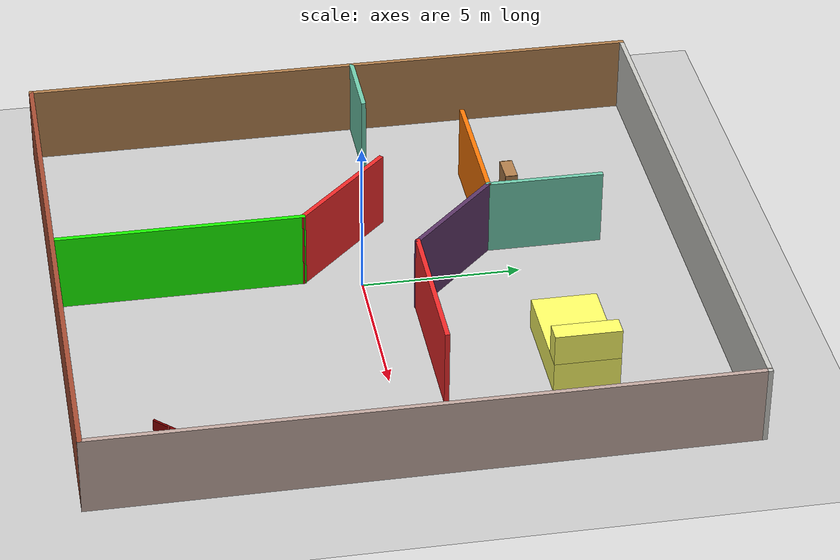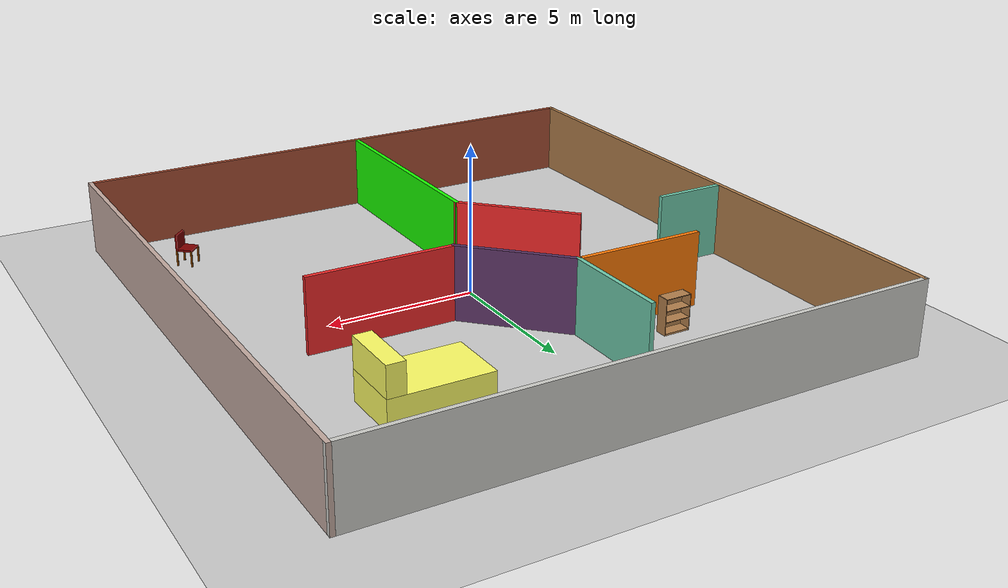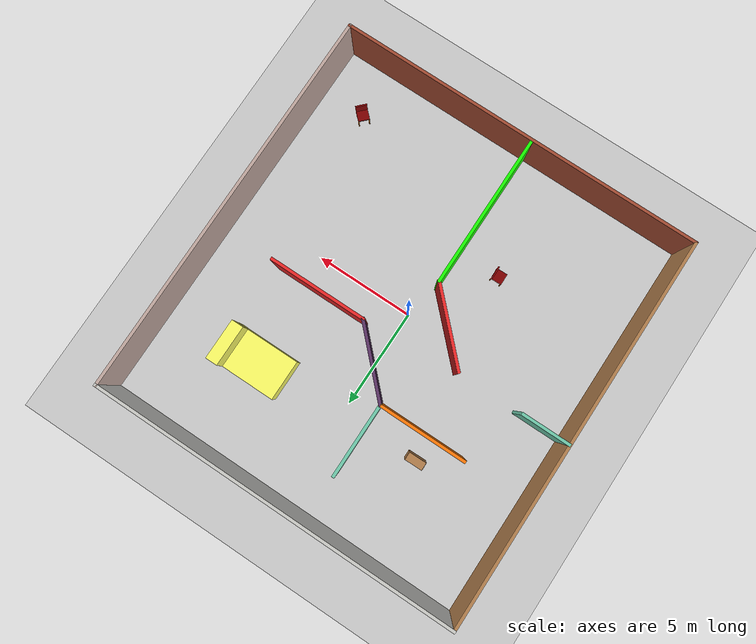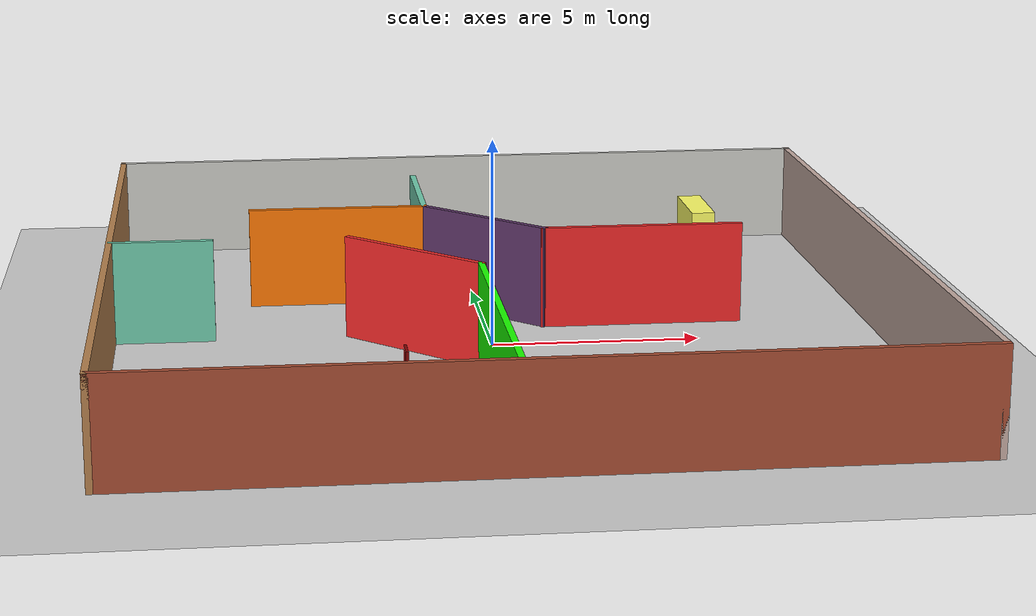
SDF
<sdf version="1.6">
 <world name="default">
  <model name="ground_plane">
   <static>1</static>
   <link name="link">
    <collision name="collision">
     <geometry><plane><normal>0 0 1</normal><size>100 100</size></plane></geometry>
     <surface>
      <contact><collide_bitmask>65535</collide_bitmask></contact>
      <friction><ode><mu>100</mu><mu2>50</mu2></ode></friction>
     </surface>
    </collision>
    <visual name="visual">
     <cast_shadows>0</cast_shadows>
     <geometry><plane><normal>0 0 1</normal><size>100 100</size></plane></geometry>
     <material>
      <script><uri>file://media/materials/scripts/gazebo.material</uri><name>Gazebo/Grey</name></script>
     </material>
    </visual>
   </link>
  </model>
  <model name="house_design">
   <pose>0.225817 0.399633 0 0 -0 0</pose>
   <link name="Wall_1">
    <collision name="Wall_1_Collision">
     <geometry><box><size>20 0.15 2.5</size></box></geometry>
     <pose>0 0 1.25 0 -0 0</pose>
    </collision>
    <visual name="Wall_1_Visual">
     <pose>0 0 1.25 0 -0 0</pose>
     <geometry><box><size>20 0.15 2.5</size></box></geometry>
     <material>
      <script><uri>file://media/materials/scripts/gazebo.material</uri><name>Gazebo/Wood</name></script>
      <ambient>1 1 1 1</ambient>
     </material>
     <meta><layer>0</layer></meta>
    </visual>
    <pose>-9.3 0 0 0 -0 -1.5708</pose>
   </link>
   <link name="Wall_2">
    <collision name="Wall_2_Collision">
     <geometry><box><size>18.75 0.15 2.5</size></box></geometry>
     <pose>0 0 1.25 0 -0 0</pose>
    </collision>
    <visual name="Wall_2_Visual">
     <pose>0 0 1.25 0 -0 0</pose>
     <geometry><box><size>18.75 0.15 2.5</size></box></geometry>
     <material>
      <script><uri>file://media/materials/scripts/gazebo.material</uri><name>Gazebo/Bricks</name></script>
      <ambient>1 1 1 1</ambient>
     </material>
     <meta><layer>0</layer></meta>
    </visual>
    <pose>-0 -9.925 0 0 -0 0</pose>
   </link>
   <link name="Wall_21">
    <collision name="Wall_21_Collision">
     <geometry><box><size>5 0.15 2.5</size></box></geometry>
     <pose>0 0 1.25 0 -0 0</pose>
    </collision>
    <visual name="Wall_21_Visual">
     <pose>0 0 1.25 0 -0 0</pose>
     <geometry><box><size>5 0.15 2.5</size></box></geometry>
     <material>
      <script><uri>file://media/materials/scripts/gazebo.material</uri><name>Gazebo/Grey</name></script>
      <ambient>0.937255 0.160784 0.160784 1</ambient>
     </material>
     <meta><layer>0</layer></meta>
    </visual>
    <pose>3.62745 1.09312 0 0 -0 3.14159</pose>
   </link>
   <link name="Wall_22">
    <collision name="Wall_22_Collision">
     <geometry><box><size>4 0.15 2.5</size></box></geometry>
     <pose>0 0 1.25 0 -0 0</pose>
    </collision>
    <visual name="Wall_22_Visual">
     <pose>0 0 1.25 0 -0 0</pose>
     <geometry><box><size>4 0.15 2.5</size></box></geometry>
     <material>
      <script><uri>file://media/materials/scripts/gazebo.material</uri><name>Gazebo/Grey</name></script>
      <ambient>0.360784 0.207843 0.4 1</ambient>
     </material>
     <meta><layer>0</layer></meta>
    </visual>
    <pose>-0.158727 2.4543 0 0 -0 2.35619</pose>
   </link>
   <link name="Wall_23">
    <collision name="Wall_23_Collision">
     <geometry><box><size>3.75 0.15 2.5</size></box></geometry>
     <pose>0 0 1.25 0 -0 0</pose>
    </collision>
    <visual name="Wall_23_Visual">
     <pose>0 0 1.25 0 -0 0</pose>
     <geometry><box><size>3.75 0.15 2.5</size></box></geometry>
     <material>
      <script><uri>file://media/materials/scripts/gazebo.material</uri><name>Gazebo/Grey</name></script>
      <ambient>0.435294 0.796078 0.67451 1</ambient>
     </material>
     <meta><layer>0</layer></meta>
    </visual>
    <pose>-1.51991 5.61548 0 0 -0 1.5708</pose>
   </link>
   <link name="Wall_25">
    <collision name="Wall_25_Collision">
     <geometry><box><size>4.5 0.15 2.5</size></box></geometry>
     <pose>0 0 1.25 0 -0 0</pose>
    </collision>
    <visual name="Wall_25_Visual">
     <pose>0 0 1.25 0 -0 0</pose>
     <geometry><box><size>4.5 0.15 2.5</size></box></geometry>
     <material>
      <script><uri>file://media/materials/scripts/gazebo.material</uri><name>Gazebo/Grey</name></script>
      <ambient>0.996078 0.47451 0.0196078 1</ambient>
     </material>
     <meta><layer>0</layer></meta>
    </visual>
    <pose>-3.69491 3.81548 0 0 -0 3.14159</pose>
   </link>
   <link name="Wall_27">
    <collision name="Wall_27_Collision">
     <geometry><box><size>4.25 0.15 2.5</size></box></geometry>
     <pose>0 0 1.25 0 -0 0</pose>
    </collision>
    <visual name="Wall_27_Visual">
     <pose>0 0 1.25 0 -0 0</pose>
     <geometry><box><size>4.25 0.15 2.5</size></box></geometry>
     <material>
      <script><uri>file://media/materials/scripts/gazebo.material</uri><name>Gazebo/Grey</name></script>
      <ambient>0.937255 0.160784 0.160784 1</ambient>
     </material>
     <meta><layer>0</layer></meta>
    </visual>
    <pose>-2.12843 -0.728636 0 0 -0 -0.785398</pose>
   </link>
   <link name="Wall_28">
    <collision name="Wall_28_Collision">
     <geometry><box><size>7.75 0.15 2.5</size></box></geometry>
     <pose>0 0 1.25 0 -0 0</pose>
    </collision>
    <visual name="Wall_28_Visual">
     <pose>0 0 1.25 0 -0 0</pose>
     <geometry><box><size>7.75 0.15 2.5</size></box></geometry>
     <material>
      <script><uri>file://media/materials/scripts/gazebo.material</uri><name>Gazebo/Grey</name></script>
      <ambient>0.0980392 1 0 1</ambient>
     </material>
     <meta><layer>0</layer></meta>
    </visual>
    <pose>-0.678859 -5.9782 0 0 -0 -1.5708</pose>
   </link>
   <link name="Wall_3">
    <collision name="Wall_3_Collision">
     <geometry><box><size>20 0.15 2.5</size></box></geometry>
     <pose>0 0 1.25 0 -0 0</pose>
    </collision>
    <visual name="Wall_3_Visual">
     <pose>0 0 1.25 0 -0 0</pose>
     <geometry><box><size>20 0.15 2.5</size></box></geometry>
     <material>
      <script><uri>file://media/materials/scripts/gazebo.material</uri><name>Gazebo/Grey</name></script>
      <ambient>0.760784 0.662745 0.627451 1</ambient>
     </material>
     <meta><layer>0</layer></meta>
    </visual>
    <pose>9.3 0 0 0 -0 1.5708</pose>
   </link>
   <link name="Wall_30">
    <collision name="Wall_30_Collision">
     <geometry><box><size>2.5 0.15 2.5</size></box></geometry>
     <pose>0 0 1.25 0 -0 0</pose>
    </collision>
    <visual name="Wall_30_Visual">
     <pose>0 0 1.25 0 -0 0</pose>
     <geometry><box><size>2.5 0.15 2.5</size></box></geometry>
     <material>
      <script><uri>file://media/materials/scripts/gazebo.material</uri><name>Gazebo/Grey</name></script>
      <ambient>0.435294 0.796078 0.67451 1</ambient>
     </material>
     <meta><layer>0</layer></meta>
    </visual>
    <pose>-8.08329 0.724022 0 0 -0 0</pose>
   </link>
   <link name="Wall_4">
    <collision name="Wall_4_Collision">
     <geometry><box><size>18.75 0.15 2.5</size></box></geometry>
     <pose>0 0 1.25 0 -0 0</pose>
    </collision>
    <visual name="Wall_4_Visual">
     <pose>0 0 1.25 0 -0 0</pose>
     <geometry><box><size>18.75 0.15 2.5</size></box></geometry>
     <material>
      <script><uri>file://media/materials/scripts/gazebo.material</uri><name>Gazebo/CeilingTiled</name></script>
      <ambient>1 1 1 1</ambient>
     </material>
     <meta><layer>0</layer></meta>
    </visual>
    <pose>-0 9.925 0 0 -0 3.14159</pose>
   </link>
   <static>1</static>
  </model>
  <model name="bed">
   <link name="link_0">
    <inertial>
     <mass>6.82794</mass>
     <inertia><ixx>2.95336</ixx><ixy>0</ixy><ixz>0</ixz><iyy>6.89905</iyy><iyz>0</iyz><izz>8.71442</izz></inertia>
    </inertial>
    <pose>-0.686745 0.00181 -0.5 0 -0 0</pose>
    <visual name="visual">
     <geometry><box><size>3.35 2.05 1</size></box></geometry>
     <material>
      <lighting>1</lighting>
      <script><uri>file://media/materials/scripts/gazebo.material</uri><name>Gazebo/Grey</name></script>
      <shader type="vertex"><normal_map>__default__</normal_map></shader>
      <ambient>1 1 0.4 1</ambient>
      <diffuse>0.7 0.7 0.7 1</diffuse>
      <specular>0.01 0.01 0.01 1</specular>
      <emissive>0 0 0 1</emissive>
     </material>
    </visual>
    <collision name="collision">
     <geometry><box><size>3.35 2.05 1</size></box></geometry>
     <surface>
      <friction>
       <ode><mu>1</mu><mu2>1</mu2><fdir1>0 0 0</fdir1><slip1>0</slip1><slip2>0</slip2></ode>
       <torsional>
        <coefficient>1</coefficient>
        <patch_radius>0</patch_radius>
        <surface_radius>0</surface_radius>
        <use_patch_radius>1</use_patch_radius>
        <ode><slip>0</slip></ode>
       </torsional>
      </friction>
      <bounce><restitution_coefficient>0</restitution_coefficient><threshold>1e+06</threshold></bounce>
      <contact>
       <collide_without_contact>0</collide_without_contact>
       <collide_without_contact_bitmask>1</collide_without_contact_bitmask>
       <collide_bitmask>1</collide_bitmask>
       <ode>
        <soft_cfm>0</soft_cfm>
        <soft_erp>0.2</soft_erp>
        <kp>1e+13</kp>
        <kd>1</kd>
        <max_vel>0.01</max_vel>
        <min_depth>0</min_depth>
       </ode>
       <bullet>
        <split_impulse>1</split_impulse>
        <split_impulse_penetration_threshold>-0.01</split_impulse_penetration_threshold>
        <soft_cfm>0</soft_cfm>
        <soft_erp>0.2</soft_erp>
        <kp>1e+13</kp>
        <kd>1</kd>
       </bullet>
      </contact>
     </surface>
    </collision>
   </link>
   <link name="link_1">
    <inertial>
     <mass>1.46441</mass>
     <inertia>
      <ixx>0.634881</ixx>
      <ixy>0</ixy>
      <ixz>0</ixz>
      <iyy>0.166371</iyy>
      <iyz>0</iyz>
      <izz>0.557184</izz>
     </inertia>
    </inertial>
    <pose>0.686742 -0.00181 0.5 0 -0 0</pose>
    <visual name="visual">
     <geometry><box><size>0.602759 2.05 1</size></box></geometry>
     <material>
      <lighting>1</lighting>
      <script><uri>file://media/materials/scripts/gazebo.material</uri><name>Gazebo/Grey</name></script>
      <shader type="vertex"><normal_map>__default__</normal_map></shader>
      <ambient>1 1 0.4 1</ambient>
      <diffuse>0.7 0.7 0.7 1</diffuse>
      <specular>0.01 0.01 0.01 1</specular>
      <emissive>0 0 0 1</emissive>
     </material>
    </visual>
    <collision name="collision">
     <geometry><box><size>0.602759 2.05 1</size></box></geometry>
     <surface>
      <friction>
       <ode><mu>1</mu><mu2>1</mu2><fdir1>0 0 0</fdir1><slip1>0</slip1><slip2>0</slip2></ode>
       <torsional>
        <coefficient>1</coefficient>
        <patch_radius>0</patch_radius>
        <surface_radius>0</surface_radius>
        <use_patch_radius>1</use_patch_radius>
        <ode><slip>0</slip></ode>
       </torsional>
      </friction>
      <bounce><restitution_coefficient>0</restitution_coefficient><threshold>1e+06</threshold></bounce>
      <contact>
       <collide_without_contact>0</collide_without_contact>
       <collide_without_contact_bitmask>1</collide_without_contact_bitmask>
       <collide_bitmask>1</collide_bitmask>
       <ode>
        <soft_cfm>0</soft_cfm>
        <soft_erp>0.2</soft_erp>
        <kp>1e+13</kp>
        <kd>1</kd>
        <max_vel>0.01</max_vel>
        <min_depth>0</min_depth>
       </ode>
       <bullet>
        <split_impulse>1</split_impulse>
        <split_impulse_penetration_threshold>-0.01</split_impulse_penetration_threshold>
        <soft_cfm>0</soft_cfm>
        <soft_erp>0.2</soft_erp>
        <kp>1e+13</kp>
        <kd>1</kd>
       </bullet>
      </contact>
     </surface>
    </collision>
   </link>
   <joint name="link_0_JOINT_0" type="fixed">
    <parent>link_0</parent>
    <child>link_1</child>
    <physics>
     <ode><limit><cfm>0</cfm><erp>0.2</erp></limit><suspension><cfm>0</cfm><erp>0.2</erp></suspension></ode>
    </physics>
   </joint>
   <static>0</static>
   <pose>5.35689 5.74584 0.999996 0 -4e-06 -2.1e-05</pose>
  </model>
  <model name="bookshelf">
   <static>1</static>
   <link name="link">
    <inertial><mass>1</mass></inertial>
    <collision name="back">
     <pose>0 0.005 0.6 0 -0 0</pose>
     <geometry><box><size>0.9 0.01 1.2</size></box></geometry>
    </collision>
    <visual name="visual1">
     <pose>0 0.005 0.6 0 -0 0</pose>
     <geometry><box><size>0.9 0.01 1.2</size></box></geometry>
     <material>
      <script><uri>file://media/materials/scripts/gazebo.material</uri><name>Gazebo/Wood</name></script>
     </material>
    </visual>
    <collision name="left_side">
     <pose>0.45 -0.195 0.6 0 -0 0</pose>
     <geometry><box><size>0.02 0.4 1.2</size></box></geometry>
    </collision>
    <visual name="visual2">
     <pose>0.45 -0.195 0.6 0 -0 0</pose>
     <geometry><box><size>0.02 0.4 1.2</size></box></geometry>
     <material>
      <script><uri>file://media/materials/scripts/gazebo.material</uri><name>Gazebo/Wood</name></script>
     </material>
    </visual>
    <collision name="right_side">
     <pose>-0.45 -0.195 0.6 0 -0 0</pose>
     <geometry><box><size>0.02 0.4 1.2</size></box></geometry>
    </collision>
    <visual name="visual3">
     <pose>-0.45 -0.195 0.6 0 -0 0</pose>
     <geometry><box><size>0.02 0.4 1.2</size></box></geometry>
     <material>
      <script><uri>file://media/materials/scripts/gazebo.material</uri><name>Gazebo/Wood</name></script>
     </material>
    </visual>
    <collision name="bottom">
     <pose>0 -0.195 0.03 0 -0 0</pose>
     <geometry><box><size>0.88 0.4 0.06</size></box></geometry>
    </collision>
    <visual name="visual4">
     <pose>0 -0.195 0.03 0 -0 0</pose>
     <geometry><box><size>0.88 0.4 0.06</size></box></geometry>
     <material>
      <script><uri>file://media/materials/scripts/gazebo.material</uri><name>Gazebo/Wood</name></script>
     </material>
    </visual>
    <collision name="top">
     <pose>0 -0.195 1.19 0 -0 0</pose>
     <geometry><box><size>0.88 0.4 0.02</size></box></geometry>
    </collision>
    <visual name="visual5">
     <pose>0 -0.195 1.19 0 -0 0</pose>
     <geometry><box><size>0.88 0.4 0.02</size></box></geometry>
     <material>
      <script><uri>file://media/materials/scripts/gazebo.material</uri><name>Gazebo/Wood</name></script>
     </material>
    </visual>
    <collision name="low_shelf">
     <pose>0 -0.195 0.43 0 -0 0</pose>
     <geometry><box><size>0.88 0.4 0.02</size></box></geometry>
    </collision>
    <visual name="visual6">
     <pose>0 -0.195 0.43 0 -0 0</pose>
     <geometry><box><size>0.88 0.4 0.02</size></box></geometry>
     <material>
      <script><uri>file://media/materials/scripts/gazebo.material</uri><name>Gazebo/Wood</name></script>
     </material>
    </visual>
    <collision name="high_shelf">
     <pose>0 -0.195 0.8 0 -0 0</pose>
     <geometry><box><size>0.88 0.4 0.02</size></box></geometry>
    </collision>
    <visual name="visual7">
     <pose>0 -0.195 0.8 0 -0 0</pose>
     <geometry><box><size>0.88 0.4 0.02</size></box></geometry>
     <material>
      <script><uri>file://media/materials/scripts/gazebo.material</uri><name>Gazebo/Wood</name></script>
     </material>
    </visual>
   </link>
   <pose>-3.97907 5.25466 -0 0 0 -3.131</pose>
  </model>
  <model name="chair_1">
   <link name="link_0">
    <inertial>
     <mass>1</mass>
     <inertia>
      <ixx>0.166667</ixx>
      <ixy>0</ixy>
      <ixz>0</ixz>
      <iyy>0.166667</iyy>
      <iyz>0</iyz>
      <izz>0.166667</izz>
     </inertia>
    </inertial>
    <pose>0.000435 0.041667 0.148333 0 -0 0</pose>
    <visual name="visual">
     <geometry><box><size>0.57 0.57 0.07</size></box></geometry>
     <material>
      <lighting>1</lighting>
      <script><uri>file://media/materials/scripts/gazebo.material</uri><name>Gazebo/Grey</name></script>
      <shader type="vertex"><normal_map>__default__</normal_map></shader>
      <ambient>0.502 0 0 1</ambient>
      <diffuse>0.7 0.7 0.7 1</diffuse>
      <specular>0.01 0.01 0.01 1</specular>
      <emissive>0 0 0 1</emissive>
     </material>
    </visual>
    <collision name="collision">
     <geometry><box><size>0.57 0.57 0.07</size></box></geometry>
     <surface>
      <friction>
       <ode><mu>1</mu><mu2>1</mu2><fdir1>0 0 0</fdir1><slip1>0</slip1><slip2>0</slip2></ode>
       <torsional>
        <coefficient>1</coefficient>
        <patch_radius>0</patch_radius>
        <surface_radius>0</surface_radius>
        <use_patch_radius>1</use_patch_radius>
        <ode><slip>0</slip></ode>
       </torsional>
      </friction>
      <bounce><restitution_coefficient>0</restitution_coefficient><threshold>1e+06</threshold></bounce>
      <contact>
       <collide_without_contact>0</collide_without_contact>
       <collide_without_contact_bitmask>1</collide_without_contact_bitmask>
       <collide_bitmask>1</collide_bitmask>
       <ode>
        <soft_cfm>0</soft_cfm>
        <soft_erp>0.2</soft_erp>
        <kp>1e+13</kp>
        <kd>1</kd>
        <max_vel>0.01</max_vel>
        <min_depth>0</min_depth>
       </ode>
       <bullet>
        <split_impulse>1</split_impulse>
        <split_impulse_penetration_threshold>-0.01</split_impulse_penetration_threshold>
        <soft_cfm>0</soft_cfm>
        <soft_erp>0.2</soft_erp>
        <kp>1e+13</kp>
        <kd>1</kd>
       </bullet>
      </contact>
     </surface>
    </collision>
   </link>
   <link name="link_1">
    <inertial>
     <mass>1</mass>
     <inertia>
      <ixx>0.166667</ixx>
      <ixy>0</ixy>
      <ixz>0</ixz>
      <iyy>0.166667</iyy>
      <iyz>0</iyz>
      <izz>0.166667</izz>
     </inertia>
    </inertial>
    <pose>0.000435 -0.208333 0.398333 0 -0 0</pose>
    <visual name="visual">
     <geometry><box><size>0.57 0.07 0.57</size></box></geometry>
     <material>
      <lighting>1</lighting>
      <script><uri>file://media/materials/scripts/gazebo.material</uri><name>Gazebo/Grey</name></script>
      <shader type="vertex"><normal_map>__default__</normal_map></shader>
      <ambient>0.502 0 0 1</ambient>
      <diffuse>0.7 0.7 0.7 1</diffuse>
      <specular>0.01 0.01 0.01 1</specular>
      <emissive>0 0 0 1</emissive>
     </material>
    </visual>
    <collision name="collision">
     <geometry><box><size>0.57 0.07 0.57</size></box></geometry>
     <surface>
      <friction>
       <ode><mu>1</mu><mu2>1</mu2><fdir1>0 0 0</fdir1><slip1>0</slip1><slip2>0</slip2></ode>
       <torsional>
        <coefficient>1</coefficient>
        <patch_radius>0</patch_radius>
        <surface_radius>0</surface_radius>
        <use_patch_radius>1</use_patch_radius>
        <ode><slip>0</slip></ode>
       </torsional>
      </friction>
      <bounce><restitution_coefficient>0</restitution_coefficient><threshold>1e+06</threshold></bounce>
      <contact>
       <collide_without_contact>0</collide_without_contact>
       <collide_without_contact_bitmask>1</collide_without_contact_bitmask>
       <collide_bitmask>1</collide_bitmask>
       <ode>
        <soft_cfm>0</soft_cfm>
        <soft_erp>0.2</soft_erp>
        <kp>1e+13</kp>
        <kd>1</kd>
        <max_vel>0.01</max_vel>
        <min_depth>0</min_depth>
       </ode>
       <bullet>
        <split_impulse>1</split_impulse>
        <split_impulse_penetration_threshold>-0.01</split_impulse_penetration_threshold>
        <soft_cfm>0</soft_cfm>
        <soft_erp>0.2</soft_erp>
        <kp>1e+13</kp>
        <kd>1</kd>
       </bullet>
      </contact>
     </surface>
    </collision>
   </link>
   <link name="link_2">
    <inertial>
     <mass>1</mass>
     <inertia>
      <ixx>0.166667</ixx>
      <ixy>0</ixy>
      <ixz>0</ixz>
      <iyy>0.166667</iyy>
      <iyz>0</iyz>
      <izz>0.166667</izz>
     </inertia>
    </inertial>
    <pose>0.257825 -0.218333 -0.136667 0 -0 0</pose>
    <visual name="visual">
     <geometry><box><size>0.05 0.05 0.57</size></box></geometry>
     <material>
      <lighting>1</lighting>
      <script><uri>file://media/materials/scripts/gazebo.material</uri><name>Gazebo/Grey</name></script>
      <shader type="vertex"><normal_map>__default__</normal_map></shader>
      <ambient>0.588 0.294 0 1</ambient>
      <diffuse>0.7 0.7 0.7 1</diffuse>
      <specular>0.01 0.01 0.01 1</specular>
      <emissive>0 0 0 1</emissive>
     </material>
    </visual>
    <collision name="collision">
     <geometry><box><size>0.05 0.05 0.57</size></box></geometry>
     <surface>
      <friction>
       <ode><mu>1</mu><mu2>1</mu2><fdir1>0 0 0</fdir1><slip1>0</slip1><slip2>0</slip2></ode>
       <torsional>
        <coefficient>1</coefficient>
        <patch_radius>0</patch_radius>
        <surface_radius>0</surface_radius>
        <use_patch_radius>1</use_patch_radius>
        <ode><slip>0</slip></ode>
       </torsional>
      </friction>
      <bounce><restitution_coefficient>0</restitution_coefficient><threshold>1e+06</threshold></bounce>
      <contact>
       <collide_without_contact>0</collide_without_contact>
       <collide_without_contact_bitmask>1</collide_without_contact_bitmask>
       <collide_bitmask>1</collide_bitmask>
       <ode>
        <soft_cfm>0</soft_cfm>
        <soft_erp>0.2</soft_erp>
        <kp>1e+13</kp>
        <kd>1</kd>
        <max_vel>0.01</max_vel>
        <min_depth>0</min_depth>
       </ode>
       <bullet>
        <split_impulse>1</split_impulse>
        <split_impulse_penetration_threshold>-0.01</split_impulse_penetration_threshold>
        <soft_cfm>0</soft_cfm>
        <soft_erp>0.2</soft_erp>
        <kp>1e+13</kp>
        <kd>1</kd>
       </bullet>
      </contact>
     </surface>
    </collision>
   </link>
   <link name="link_2_clone">
    <inertial>
     <mass>1</mass>
     <inertia>
      <ixx>0.166667</ixx>
      <ixy>0</ixy>
      <ixz>0</ixz>
      <iyy>0.166667</iyy>
      <iyz>0</iyz>
      <izz>0.166667</izz>
     </inertia>
    </inertial>
    <pose>-0.259565 -0.218333 -0.136667 0 -0 0</pose>
    <visual name="visual">
     <geometry><box><size>0.05 0.05 0.57</size></box></geometry>
     <material>
      <lighting>1</lighting>
      <script><uri>file://media/materials/scripts/gazebo.material</uri><name>Gazebo/Grey</name></script>
      <shader type="vertex"><normal_map>__default__</normal_map></shader>
      <ambient>0.588 0.294 0 1</ambient>
      <diffuse>0.7 0.7 0.7 1</diffuse>
      <specular>0.01 0.01 0.01 1</specular>
      <emissive>0 0 0 1</emissive>
     </material>
    </visual>
    <collision name="collision">
     <geometry><box><size>0.05 0.05 0.57</size></box></geometry>
     <surface>
      <friction>
       <ode><mu>1</mu><mu2>1</mu2><fdir1>0 0 0</fdir1><slip1>0</slip1><slip2>0</slip2></ode>
       <torsional>
        <coefficient>1</coefficient>
        <patch_radius>0</patch_radius>
        <surface_radius>0</surface_radius>
        <use_patch_radius>1</use_patch_radius>
        <ode><slip>0</slip></ode>
       </torsional>
      </friction>
      <bounce><restitution_coefficient>0</restitution_coefficient><threshold>1e+06</threshold></bounce>
      <contact>
       <collide_without_contact>0</collide_without_contact>
       <collide_without_contact_bitmask>1</collide_without_contact_bitmask>
       <collide_bitmask>1</collide_bitmask>
       <ode>
        <soft_cfm>0</soft_cfm>
        <soft_erp>0.2</soft_erp>
        <kp>1e+13</kp>
        <kd>1</kd>
        <max_vel>0.01</max_vel>
        <min_depth>0</min_depth>
       </ode>
       <bullet>
        <split_impulse>1</split_impulse>
        <split_impulse_penetration_threshold>-0.01</split_impulse_penetration_threshold>
        <soft_cfm>0</soft_cfm>
        <soft_erp>0.2</soft_erp>
        <kp>1e+13</kp>
        <kd>1</kd>
       </bullet>
      </contact>
     </surface>
    </collision>
   </link>
   <link name="link_2_clone_clone">
    <inertial>
     <mass>1</mass>
     <inertia>
      <ixx>0.166667</ixx>
      <ixy>0</ixy>
      <ixz>0</ixz>
      <iyy>0.166667</iyy>
      <iyz>0</iyz>
      <izz>0.166667</izz>
     </inertia>
    </inertial>
    <pose>-0.259565 0.301667 -0.136667 0 -0 0</pose>
    <visual name="visual">
     <geometry><box><size>0.05 0.05 0.57</size></box></geometry>
     <material>
      <lighting>1</lighting>
      <script><uri>file://media/materials/scripts/gazebo.material</uri><name>Gazebo/Grey</name></script>
      <shader type="vertex"><normal_map>__default__</normal_map></shader>
      <ambient>0.588 0.294 0 1</ambient>
      <diffuse>0.7 0.7 0.7 1</diffuse>
      <specular>0.01 0.01 0.01 1</specular>
      <emissive>0 0 0 1</emissive>
     </material>
    </visual>
    <collision name="collision">
     <geometry><box><size>0.05 0.05 0.57</size></box></geometry>
     <surface>
      <friction>
       <ode><mu>1</mu><mu2>1</mu2><fdir1>0 0 0</fdir1><slip1>0</slip1><slip2>0</slip2></ode>
       <torsional>
        <coefficient>1</coefficient>
        <patch_radius>0</patch_radius>
        <surface_radius>0</surface_radius>
        <use_patch_radius>1</use_patch_radius>
        <ode><slip>0</slip></ode>
       </torsional>
      </friction>
      <bounce><restitution_coefficient>0</restitution_coefficient><threshold>1e+06</threshold></bounce>
      <contact>
       <collide_without_contact>0</collide_without_contact>
       <collide_without_contact_bitmask>1</collide_without_contact_bitmask>
       <collide_bitmask>1</collide_bitmask>
       <ode>
        <soft_cfm>0</soft_cfm>
        <soft_erp>0.2</soft_erp>
        <kp>1e+13</kp>
        <kd>1</kd>
        <max_vel>0.01</max_vel>
        <min_depth>0</min_depth>
       </ode>
       <bullet>
        <split_impulse>1</split_impulse>
        <split_impulse_penetration_threshold>-0.01</split_impulse_penetration_threshold>
        <soft_cfm>0</soft_cfm>
        <soft_erp>0.2</soft_erp>
        <kp>1e+13</kp>
        <kd>1</kd>
       </bullet>
      </contact>
     </surface>
    </collision>
   </link>
   <link name="link_2_clone_clone_0">
    <inertial>
     <mass>1</mass>
     <inertia>
      <ixx>0.166667</ixx>
      <ixy>0</ixy>
      <ixz>0</ixz>
      <iyy>0.166667</iyy>
      <iyz>0</iyz>
      <izz>0.166667</izz>
     </inertia>
    </inertial>
    <pose>0.260435 0.301667 -0.136667 0 -0 0</pose>
    <visual name="visual">
     <geometry><box><size>0.05 0.05 0.57</size></box></geometry>
     <material>
      <lighting>1</lighting>
      <script><uri>file://media/materials/scripts/gazebo.material</uri><name>Gazebo/Grey</name></script>
      <shader type="vertex"><normal_map>__default__</normal_map></shader>
      <ambient>0.588 0.294 0 1</ambient>
      <diffuse>0.7 0.7 0.7 1</diffuse>
      <specular>0.01 0.01 0.01 1</specular>
      <emissive>0 0 0 1</emissive>
     </material>
    </visual>
    <collision name="collision">
     <geometry><box><size>0.05 0.05 0.57</size></box></geometry>
     <surface>
      <friction>
       <ode><mu>1</mu><mu2>1</mu2><fdir1>0 0 0</fdir1><slip1>0</slip1><slip2>0</slip2></ode>
       <torsional>
        <coefficient>1</coefficient>
        <patch_radius>0</patch_radius>
        <surface_radius>0</surface_radius>
        <use_patch_radius>1</use_patch_radius>
        <ode><slip>0</slip></ode>
       </torsional>
      </friction>
      <bounce><restitution_coefficient>0</restitution_coefficient><threshold>1e+06</threshold></bounce>
      <contact>
       <collide_without_contact>0</collide_without_contact>
       <collide_without_contact_bitmask>1</collide_without_contact_bitmask>
       <collide_bitmask>1</collide_bitmask>
       <ode>
        <soft_cfm>0</soft_cfm>
        <soft_erp>0.2</soft_erp>
        <kp>1e+13</kp>
        <kd>1</kd>
        <max_vel>0.01</max_vel>
        <min_depth>0</min_depth>
       </ode>
       <bullet>
        <split_impulse>1</split_impulse>
        <split_impulse_penetration_threshold>-0.01</split_impulse_penetration_threshold>
        <soft_cfm>0</soft_cfm>
        <soft_erp>0.2</soft_erp>
        <kp>1e+13</kp>
        <kd>1</kd>
       </bullet>
      </contact>
     </surface>
    </collision>
   </link>
   <joint name="link_0_JOINT_0" type="fixed">
    <parent>link_0</parent>
    <child>link_1</child>
    <physics>
     <ode><limit><cfm>0</cfm><erp>0.2</erp></limit><suspension><cfm>0</cfm><erp>0.2</erp></suspension></ode>
    </physics>
   </joint>
   <joint name="link_0_JOINT_4" type="fixed">
    <parent>link_0</parent>
    <child>link_2</child>
    <physics>
     <ode><limit><cfm>0</cfm><erp>0.2</erp></limit><suspension><cfm>0</cfm><erp>0.2</erp></suspension></ode>
    </physics>
   </joint>
   <joint name="link_0_JOINT_5" type="fixed">
    <parent>link_0</parent>
    <child>link_2_clone</child>
    <physics>
     <ode><limit><cfm>0</cfm><erp>0.2</erp></limit><suspension><cfm>0</cfm><erp>0.2</erp></suspension></ode>
    </physics>
   </joint>
   <joint name="link_0_JOINT_6" type="fixed">
    <parent>link_0</parent>
    <child>link_2_clone_clone_0</child>
    <physics>
     <ode><limit><cfm>0</cfm><erp>0.2</erp></limit><suspension><cfm>0</cfm><erp>0.2</erp></suspension></ode>
    </physics>
   </joint>
   <joint name="link_0_JOINT_7" type="fixed">
    <parent>link_0</parent>
    <child>link_2_clone_clone</child>
    <physics>
     <ode><limit><cfm>0</cfm><erp>0.2</erp></limit><suspension><cfm>0</cfm><erp>0.2</erp></suspension></ode>
    </physics>
   </joint>
   <static>0</static>
   <pose>-2.57067 -3.82803 0.421667 -0 -1e-06 1.58256</pose>
  </model>
  <model name="chair_3">
   <link name="link_0">
    <inertial>
     <mass>1</mass>
     <inertia>
      <ixx>0.166667</ixx>
      <ixy>0</ixy>
      <ixz>0</ixz>
      <iyy>0.166667</iyy>
      <iyz>0</iyz>
      <izz>0.166667</izz>
     </inertia>
    </inertial>
    <pose>0.000435 0.041667 0.148333 0 -0 0</pose>
    <visual name="visual">
     <geometry><box><size>0.57 0.57 0.07</size></box></geometry>
     <material>
      <lighting>1</lighting>
      <script><uri>file://media/materials/scripts/gazebo.material</uri><name>Gazebo/Grey</name></script>
      <shader type="vertex"><normal_map>__default__</normal_map></shader>
      <ambient>0.502 0 0 1</ambient>
      <diffuse>0.7 0.7 0.7 1</diffuse>
      <specular>0.01 0.01 0.01 1</specular>
      <emissive>0 0 0 1</emissive>
     </material>
    </visual>
    <collision name="collision">
     <geometry><box><size>0.57 0.57 0.07</size></box></geometry>
     <surface>
      <friction>
       <ode><mu>1</mu><mu2>1</mu2><fdir1>0 0 0</fdir1><slip1>0</slip1><slip2>0</slip2></ode>
       <torsional>
        <coefficient>1</coefficient>
        <patch_radius>0</patch_radius>
        <surface_radius>0</surface_radius>
        <use_patch_radius>1</use_patch_radius>
        <ode><slip>0</slip></ode>
       </torsional>
      </friction>
      <bounce><restitution_coefficient>0</restitution_coefficient><threshold>1e+06</threshold></bounce>
      <contact>
       <collide_without_contact>0</collide_without_contact>
       <collide_without_contact_bitmask>1</collide_without_contact_bitmask>
       <collide_bitmask>1</collide_bitmask>
       <ode>
        <soft_cfm>0</soft_cfm>
        <soft_erp>0.2</soft_erp>
        <kp>1e+13</kp>
        <kd>1</kd>
        <max_vel>0.01</max_vel>
        <min_depth>0</min_depth>
       </ode>
       <bullet>
        <split_impulse>1</split_impulse>
        <split_impulse_penetration_threshold>-0.01</split_impulse_penetration_threshold>
        <soft_cfm>0</soft_cfm>
        <soft_erp>0.2</soft_erp>
        <kp>1e+13</kp>
        <kd>1</kd>
       </bullet>
      </contact>
     </surface>
    </collision>
   </link>
   <link name="link_1">
    <inertial>
     <mass>1</mass>
     <inertia>
      <ixx>0.166667</ixx>
      <ixy>0</ixy>
      <ixz>0</ixz>
      <iyy>0.166667</iyy>
      <iyz>0</iyz>
      <izz>0.166667</izz>
     </inertia>
    </inertial>
    <pose>0.000435 -0.208333 0.398333 0 -0 0</pose>
    <visual name="visual">
     <geometry><box><size>0.57 0.07 0.57</size></box></geometry>
     <material>
      <lighting>1</lighting>
      <script><uri>file://media/materials/scripts/gazebo.material</uri><name>Gazebo/Grey</name></script>
      <shader type="vertex"><normal_map>__default__</normal_map></shader>
      <ambient>0.502 0 0 1</ambient>
      <diffuse>0.7 0.7 0.7 1</diffuse>
      <specular>0.01 0.01 0.01 1</specular>
      <emissive>0 0 0 1</emissive>
     </material>
    </visual>
    <collision name="collision">
     <geometry><box><size>0.57 0.07 0.57</size></box></geometry>
     <surface>
      <friction>
       <ode><mu>1</mu><mu2>1</mu2><fdir1>0 0 0</fdir1><slip1>0</slip1><slip2>0</slip2></ode>
       <torsional>
        <coefficient>1</coefficient>
        <patch_radius>0</patch_radius>
        <surface_radius>0</surface_radius>
        <use_patch_radius>1</use_patch_radius>
        <ode><slip>0</slip></ode>
       </torsional>
      </friction>
      <bounce><restitution_coefficient>0</restitution_coefficient><threshold>1e+06</threshold></bounce>
      <contact>
       <collide_without_contact>0</collide_without_contact>
       <collide_without_contact_bitmask>1</collide_without_contact_bitmask>
       <collide_bitmask>1</collide_bitmask>
       <ode>
        <soft_cfm>0</soft_cfm>
        <soft_erp>0.2</soft_erp>
        <kp>1e+13</kp>
        <kd>1</kd>
        <max_vel>0.01</max_vel>
        <min_depth>0</min_depth>
       </ode>
       <bullet>
        <split_impulse>1</split_impulse>
        <split_impulse_penetration_threshold>-0.01</split_impulse_penetration_threshold>
        <soft_cfm>0</soft_cfm>
        <soft_erp>0.2</soft_erp>
        <kp>1e+13</kp>
        <kd>1</kd>
       </bullet>
      </contact>
     </surface>
    </collision>
   </link>
   <link name="link_2">
    <inertial>
     <mass>1</mass>
     <inertia>
      <ixx>0.166667</ixx>
      <ixy>0</ixy>
      <ixz>0</ixz>
      <iyy>0.166667</iyy>
      <iyz>0</iyz>
      <izz>0.166667</izz>
     </inertia>
    </inertial>
    <pose>0.257825 -0.218333 -0.136667 0 -0 0</pose>
    <visual name="visual">
     <geometry><box><size>0.05 0.05 0.57</size></box></geometry>
     <material>
      <lighting>1</lighting>
      <script><uri>file://media/materials/scripts/gazebo.material</uri><name>Gazebo/Grey</name></script>
      <shader type="vertex"><normal_map>__default__</normal_map></shader>
      <ambient>0.588 0.294 0 1</ambient>
      <diffuse>0.7 0.7 0.7 1</diffuse>
      <specular>0.01 0.01 0.01 1</specular>
      <emissive>0 0 0 1</emissive>
     </material>
    </visual>
    <collision name="collision">
     <geometry><box><size>0.05 0.05 0.57</size></box></geometry>
     <surface>
      <friction>
       <ode><mu>1</mu><mu2>1</mu2><fdir1>0 0 0</fdir1><slip1>0</slip1><slip2>0</slip2></ode>
       <torsional>
        <coefficient>1</coefficient>
        <patch_radius>0</patch_radius>
        <surface_radius>0</surface_radius>
        <use_patch_radius>1</use_patch_radius>
        <ode><slip>0</slip></ode>
       </torsional>
      </friction>
      <bounce><restitution_coefficient>0</restitution_coefficient><threshold>1e+06</threshold></bounce>
      <contact>
       <collide_without_contact>0</collide_without_contact>
       <collide_without_contact_bitmask>1</collide_without_contact_bitmask>
       <collide_bitmask>1</collide_bitmask>
       <ode>
        <soft_cfm>0</soft_cfm>
        <soft_erp>0.2</soft_erp>
        <kp>1e+13</kp>
        <kd>1</kd>
        <max_vel>0.01</max_vel>
        <min_depth>0</min_depth>
       </ode>
       <bullet>
        <split_impulse>1</split_impulse>
        <split_impulse_penetration_threshold>-0.01</split_impulse_penetration_threshold>
        <soft_cfm>0</soft_cfm>
        <soft_erp>0.2</soft_erp>
        <kp>1e+13</kp>
        <kd>1</kd>
       </bullet>
      </contact>
     </surface>
    </collision>
   </link>
   <link name="link_2_clone">
    <inertial>
     <mass>1</mass>
     <inertia>
      <ixx>0.166667</ixx>
      <ixy>0</ixy>
      <ixz>0</ixz>
      <iyy>0.166667</iyy>
      <iyz>0</iyz>
      <izz>0.166667</izz>
     </inertia>
    </inertial>
    <pose>-0.259565 -0.218333 -0.136667 0 -0 0</pose>
    <visual name="visual">
     <geometry><box><size>0.05 0.05 0.57</size></box></geometry>
     <material>
      <lighting>1</lighting>
      <script><uri>file://media/materials/scripts/gazebo.material</uri><name>Gazebo/Grey</name></script>
      <shader type="vertex"><normal_map>__default__</normal_map></shader>
      <ambient>0.588 0.294 0 1</ambient>
      <diffuse>0.7 0.7 0.7 1</diffuse>
      <specular>0.01 0.01 0.01 1</specular>
      <emissive>0 0 0 1</emissive>
     </material>
    </visual>
    <collision name="collision">
     <geometry><box><size>0.05 0.05 0.57</size></box></geometry>
     <surface>
      <friction>
       <ode><mu>1</mu><mu2>1</mu2><fdir1>0 0 0</fdir1><slip1>0</slip1><slip2>0</slip2></ode>
       <torsional>
        <coefficient>1</coefficient>
        <patch_radius>0</patch_radius>
        <surface_radius>0</surface_radius>
        <use_patch_radius>1</use_patch_radius>
        <ode><slip>0</slip></ode>
       </torsional>
      </friction>
      <bounce><restitution_coefficient>0</restitution_coefficient><threshold>1e+06</threshold></bounce>
      <contact>
       <collide_without_contact>0</collide_without_contact>
       <collide_without_contact_bitmask>1</collide_without_contact_bitmask>
       <collide_bitmask>1</collide_bitmask>
       <ode>
        <soft_cfm>0</soft_cfm>
        <soft_erp>0.2</soft_erp>
        <kp>1e+13</kp>
        <kd>1</kd>
        <max_vel>0.01</max_vel>
        <min_depth>0</min_depth>
       </ode>
       <bullet>
        <split_impulse>1</split_impulse>
        <split_impulse_penetration_threshold>-0.01</split_impulse_penetration_threshold>
        <soft_cfm>0</soft_cfm>
        <soft_erp>0.2</soft_erp>
        <kp>1e+13</kp>
        <kd>1</kd>
       </bullet>
      </contact>
     </surface>
    </collision>
   </link>
   <link name="link_2_clone_clone">
    <inertial>
     <mass>1</mass>
     <inertia>
      <ixx>0.166667</ixx>
      <ixy>0</ixy>
      <ixz>0</ixz>
      <iyy>0.166667</iyy>
      <iyz>0</iyz>
      <izz>0.166667</izz>
     </inertia>
    </inertial>
    <pose>-0.259565 0.301667 -0.136667 0 -0 0</pose>
    <visual name="visual">
     <geometry><box><size>0.05 0.05 0.57</size></box></geometry>
     <material>
      <lighting>1</lighting>
      <script><uri>file://media/materials/scripts/gazebo.material</uri><name>Gazebo/Grey</name></script>
      <shader type="vertex"><normal_map>__default__</normal_map></shader>
      <ambient>0.588 0.294 0 1</ambient>
      <diffuse>0.7 0.7 0.7 1</diffuse>
      <specular>0.01 0.01 0.01 1</specular>
      <emissive>0 0 0 1</emissive>
     </material>
    </visual>
    <collision name="collision">
     <geometry><box><size>0.05 0.05 0.57</size></box></geometry>
     <surface>
      <friction>
       <ode><mu>1</mu><mu2>1</mu2><fdir1>0 0 0</fdir1><slip1>0</slip1><slip2>0</slip2></ode>
       <torsional>
        <coefficient>1</coefficient>
        <patch_radius>0</patch_radius>
        <surface_radius>0</surface_radius>
        <use_patch_radius>1</use_patch_radius>
        <ode><slip>0</slip></ode>
       </torsional>
      </friction>
      <bounce><restitution_coefficient>0</restitution_coefficient><threshold>1e+06</threshold></bounce>
      <contact>
       <collide_without_contact>0</collide_without_contact>
       <collide_without_contact_bitmask>1</collide_without_contact_bitmask>
       <collide_bitmask>1</collide_bitmask>
       <ode>
        <soft_cfm>0</soft_cfm>
        <soft_erp>0.2</soft_erp>
        <kp>1e+13</kp>
        <kd>1</kd>
        <max_vel>0.01</max_vel>
        <min_depth>0</min_depth>
       </ode>
       <bullet>
        <split_impulse>1</split_impulse>
        <split_impulse_penetration_threshold>-0.01</split_impulse_penetration_threshold>
        <soft_cfm>0</soft_cfm>
        <soft_erp>0.2</soft_erp>
        <kp>1e+13</kp>
        <kd>1</kd>
       </bullet>
      </contact>
     </surface>
    </collision>
   </link>
   <link name="link_2_clone_clone_0">
    <inertial>
     <mass>1</mass>
     <inertia>
      <ixx>0.166667</ixx>
      <ixy>0</ixy>
      <ixz>0</ixz>
      <iyy>0.166667</iyy>
      <iyz>0</iyz>
      <izz>0.166667</izz>
     </inertia>
    </inertial>
    <pose>0.260435 0.301667 -0.136667 0 -0 0</pose>
    <visual name="visual">
     <geometry><box><size>0.05 0.05 0.57</size></box></geometry>
     <material>
      <lighting>1</lighting>
      <script><uri>file://media/materials/scripts/gazebo.material</uri><name>Gazebo/Grey</name></script>
      <shader type="vertex"><normal_map>__default__</normal_map></shader>
      <ambient>0.588 0.294 0 1</ambient>
      <diffuse>0.7 0.7 0.7 1</diffuse>
      <specular>0.01 0.01 0.01 1</specular>
      <emissive>0 0 0 1</emissive>
     </material>
    </visual>
    <collision name="collision">
     <geometry><box><size>0.05 0.05 0.57</size></box></geometry>
     <surface>
      <friction>
       <ode><mu>1</mu><mu2>1</mu2><fdir1>0 0 0</fdir1><slip1>0</slip1><slip2>0</slip2></ode>
       <torsional>
        <coefficient>1</coefficient>
        <patch_radius>0</patch_radius>
        <surface_radius>0</surface_radius>
        <use_patch_radius>1</use_patch_radius>
        <ode><slip>0</slip></ode>
       </torsional>
      </friction>
      <bounce><restitution_coefficient>0</restitution_coefficient><threshold>1e+06</threshold></bounce>
      <contact>
       <collide_without_contact>0</collide_without_contact>
       <collide_without_contact_bitmask>1</collide_without_contact_bitmask>
       <collide_bitmask>1</collide_bitmask>
       <ode>
        <soft_cfm>0</soft_cfm>
        <soft_erp>0.2</soft_erp>
        <kp>1e+13</kp>
        <kd>1</kd>
        <max_vel>0.01</max_vel>
        <min_depth>0</min_depth>
       </ode>
       <bullet>
        <split_impulse>1</split_impulse>
        <split_impulse_penetration_threshold>-0.01</split_impulse_penetration_threshold>
        <soft_cfm>0</soft_cfm>
        <soft_erp>0.2</soft_erp>
        <kp>1e+13</kp>
        <kd>1</kd>
       </bullet>
      </contact>
     </surface>
    </collision>
   </link>
   <joint name="link_0_JOINT_0" type="fixed">
    <parent>link_0</parent>
    <child>link_1</child>
    <physics>
     <ode><limit><cfm>0</cfm><erp>0.2</erp></limit><suspension><cfm>0</cfm><erp>0.2</erp></suspension></ode>
    </physics>
   </joint>
   <joint name="link_0_JOINT_4" type="fixed">
    <parent>link_0</parent>
    <child>link_2</child>
    <physics>
     <ode><limit><cfm>0</cfm><erp>0.2</erp></limit><suspension><cfm>0</cfm><erp>0.2</erp></suspension></ode>
    </physics>
   </joint>
   <joint name="link_0_JOINT_5" type="fixed">
    <parent>link_0</parent>
    <child>link_2_clone</child>
    <physics>
     <ode><limit><cfm>0</cfm><erp>0.2</erp></limit><suspension><cfm>0</cfm><erp>0.2</erp></suspension></ode>
    </physics>
   </joint>
   <joint name="link_0_JOINT_6" type="fixed">
    <parent>link_0</parent>
    <child>link_2_clone_clone_0</child>
    <physics>
     <ode><limit><cfm>0</cfm><erp>0.2</erp></limit><suspension><cfm>0</cfm><erp>0.2</erp></suspension></ode>
    </physics>
   </joint>
   <joint name="link_0_JOINT_7" type="fixed">
    <parent>link_0</parent>
    <child>link_2_clone_clone</child>
    <physics>
     <ode><limit><cfm>0</cfm><erp>0.2</erp></limit><suspension><cfm>0</cfm><erp>0.2</erp></suspension></ode>
    </physics>
   </joint>
   <static>0</static>
   <pose>7.19032 -6.91157 0.421667 1e-06 2e-06 0.802774</pose>
  </model>
 </world>
</sdf>
